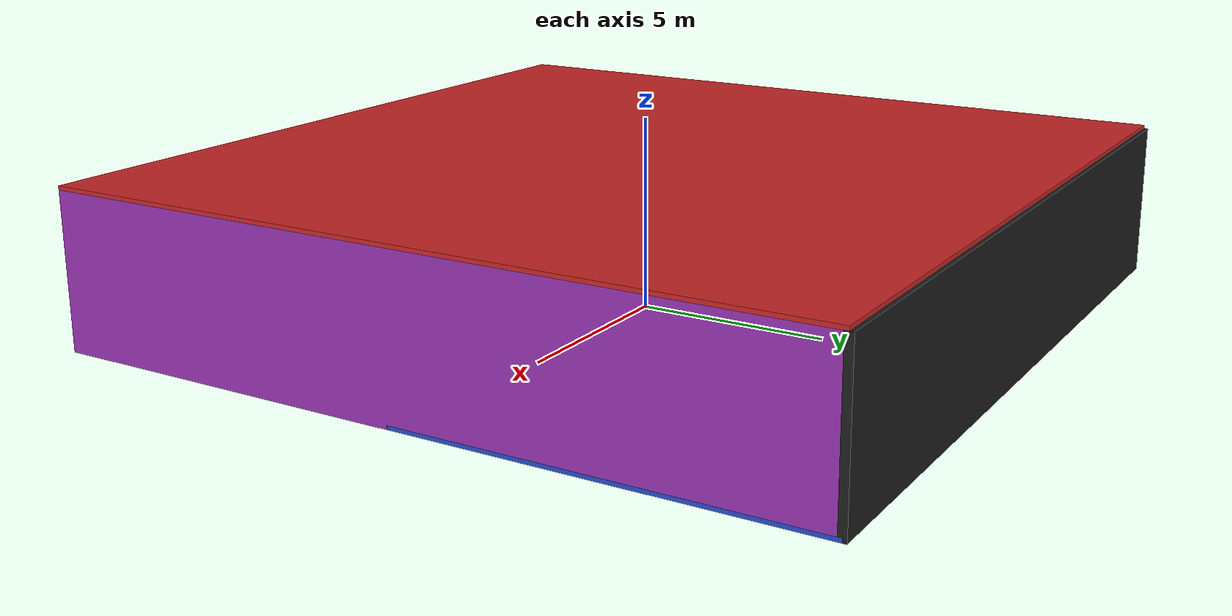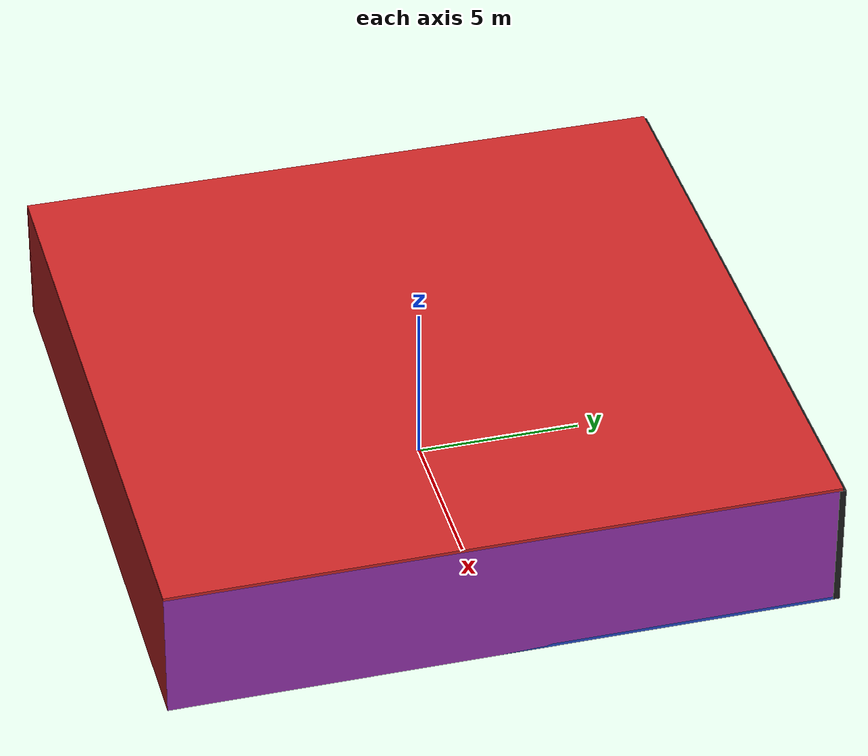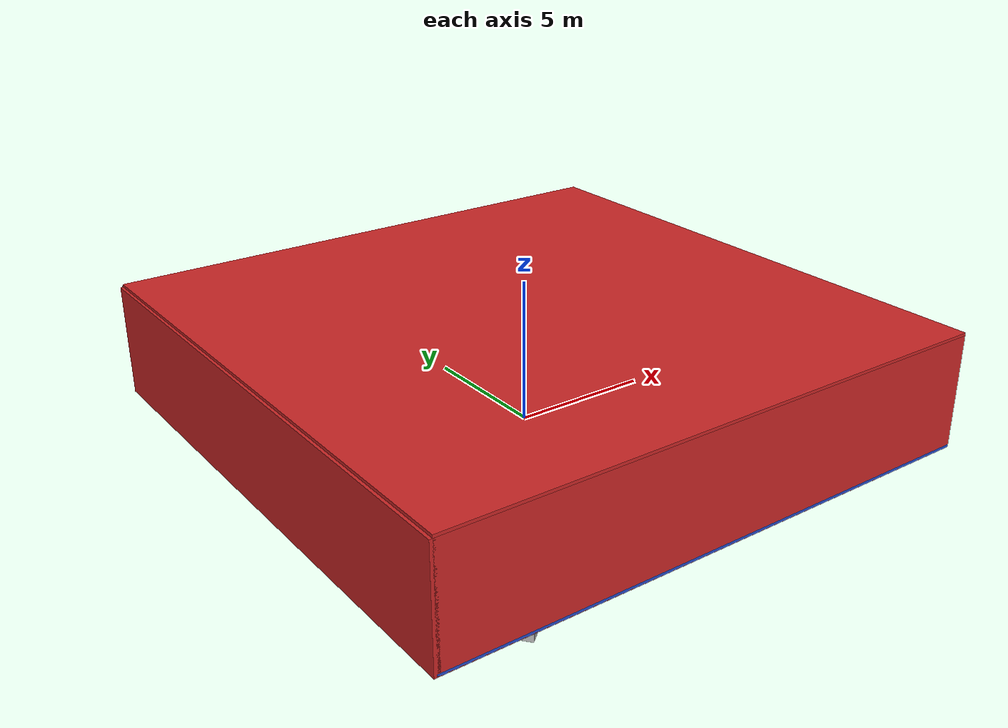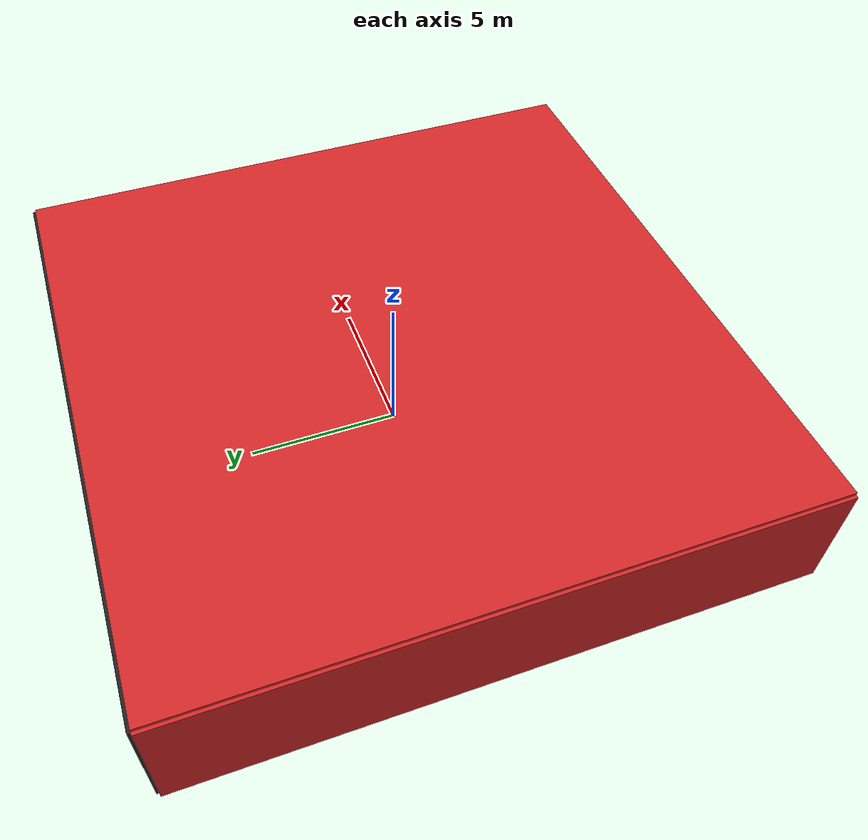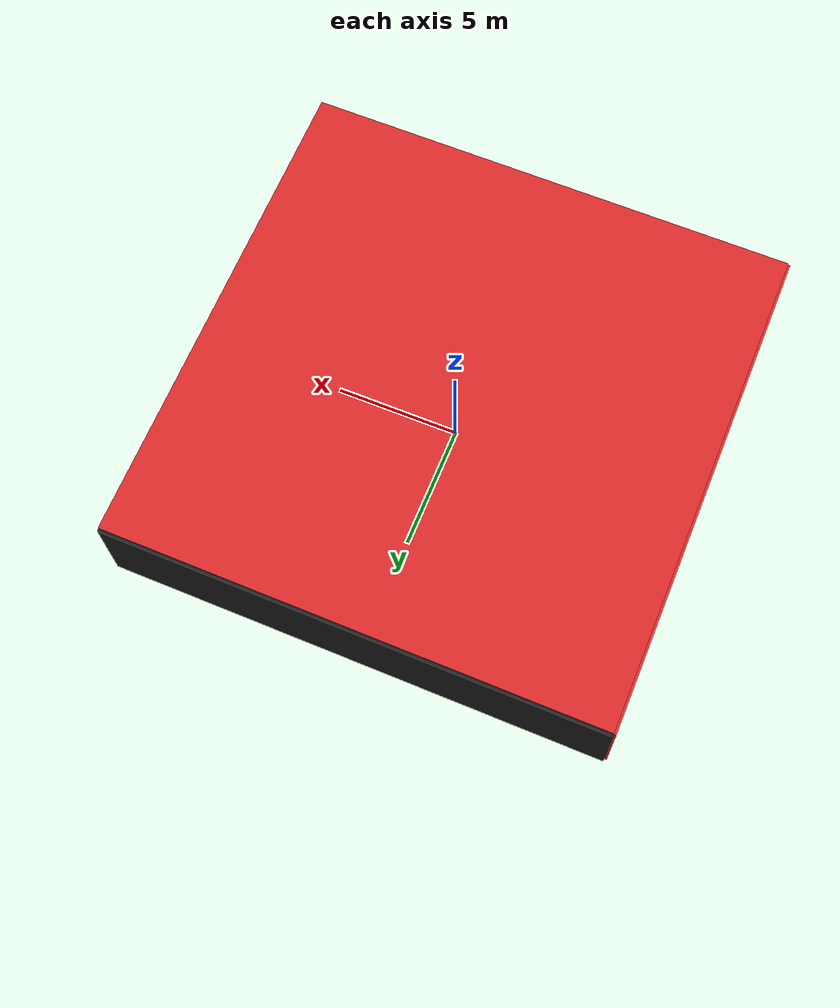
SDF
<sdf version="1.4">
 <world name="default">
  <physics type="ode">
   <max_step_size>0.001</max_step_size>
   <real_time_factor>1</real_time_factor>
   <real_time_update_rate>1000</real_time_update_rate>
   <gravity>0 0 -9.8</gravity>
  </physics>
  <scene><ambient>0.4 0.4 0.4 1</ambient><background>0.7 0.7 0.7 1</background><shadows>1</shadows></scene>
  <model name="Surrounding">
   <static>1</static>
   <link name="Ceiling">
    <collision name="Ceiling_Collision"><geometry><box><size>20 20 0.1</size></box></geometry></collision>
    <visual name="Ceiling_Visual">
     <geometry><box><size>20 20 0.1</size></box></geometry>
     <material>
      <script><uri>file://media/materials/scripts/gazebo.material</uri><name>Gazebo/RedBright</name></script>
     </material>
    </visual>
    <pose>0 0 4.05 0 0 0</pose>
   </link>
   <link name="Wall_South">
    <collision name="Wall_South_Collision">
     <geometry><box><size>20 0 4</size></box></geometry>
     <pose>0 0 2 0 -0 0</pose>
    </collision>
    <visual name="Wall_South_Visual">
     <pose>0 0 2 0 -0 0</pose>
     <geometry><box><size>20 0 4</size></box></geometry>
     <material>
      <script><uri>file://media/materials/scripts/gazebo.material</uri><name>Gazebo/RedBright</name></script>
     </material>
    </visual>
    <velocity_decay><linear>0</linear><angular>0</angular></velocity_decay>
    <pose>0 -10 0 0 -0 0</pose>
   </link>
   <link name="Wall_East">
    <collision name="Wall_21_Collision">
     <geometry><box><size>20 0 4</size></box></geometry>
     <pose>0 0 2 0 -0 0</pose>
    </collision>
    <visual name="Wall_21_Visual">
     <pose>0 0 2 0 -0 0</pose>
     <geometry><box><size>20 0 4</size></box></geometry>
     <material>
      <script><uri>file://media/materials/scripts/gazebo.material</uri><name>Gazebo/Purple</name></script>
     </material>
    </visual>
    <velocity_decay><linear>0</linear><angular>0</angular></velocity_decay>
    <pose>10 0 0 0 -0 1.5708</pose>
   </link>
   <link name="Wall_North">
    <collision name="Wall_22_Collision">
     <geometry><box><size>20 0.2 4</size></box></geometry>
     <pose>0 0 2 0 -0 0</pose>
    </collision>
    <visual name="Wall_22_Visual">
     <pose>0 0 2 0 -0 0</pose>
     <geometry><box><size>20 0.2 4</size></box></geometry>
     <material>
      <script><uri>file://media/materials/scripts/gazebo.material</uri><name>Gazebo/Black</name></script>
     </material>
    </visual>
    <velocity_decay><linear>0</linear><angular>0</angular></velocity_decay>
    <pose>0 10 0 0 -0 0</pose>
   </link>
   <link name="Wall_West">
    <collision name="Wall_23_Collision">
     <geometry><box><size>20 0.2 4</size></box></geometry>
     <pose>0 0 2 0 -0 0</pose>
    </collision>
    <visual name="Wall_23_Visual">
     <pose>0 0 2 0 -0 0</pose>
     <geometry><box><size>20 0.2 4</size></box></geometry>
     <material>
      <script><uri>file://media/materials/scripts/gazebo.material</uri><name>Gazebo/RedGlow</name></script>
     </material>
    </visual>
    <velocity_decay><linear>0</linear><angular>0</angular></velocity_decay>
    <pose>-10 0 0 0 0 -1.5708</pose>
   </link>
   <link name="Ground_link">
    <collision name="collision">
     <pose>0 0 .05 0 -0 0</pose>
     <geometry><box><size>20 20 0.1</size></box></geometry>
    </collision>
    <visual name="visual">
     <pose>0 0 .05 0 -0 0</pose>
     <geometry><box><size>20 20 0.1</size></box></geometry>
     <material>
      <script><uri>file://media/materials/scripts/gazebo.material</uri><name>Gazebo/Blue</name></script>
     </material>
    </visual>
   </link>
   <static>1</static>
  </model>
  <spherical_coordinates>
   <surface_model>EARTH_WGS84</surface_model>
   <latitude_deg>0</latitude_deg>
   <longitude_deg>0</longitude_deg>
   <elevation>0</elevation>
   <heading_deg>0</heading_deg>
  </spherical_coordinates>
  <light name="lightball_0" type="diffuse">
   <diffuse>0.8 0.8 0.8 1</diffuse>
   <specular>0.2 0.2 0.2 1</specular>
   <attenuation>
    <range>100</range>
    <constant>0.7</constant>
    <linear>0.01</linear>
    <quadratic>0.001</quadratic>
   </attenuation>
   <direction>-0.5 0.1 -0.9</direction>
   <pose>3.77893621044 2.39277135064 3.65028481953 0 0 0</pose>
  </light>
  <light name="lightball_1" type="diffuse">
   <diffuse>0.8 0.8 0.8 1</diffuse>
   <specular>0.2 0.2 0.2 1</specular>
   <attenuation>
    <range>100</range>
    <constant>0.7</constant>
    <linear>0.01</linear>
    <quadratic>0.001</quadratic>
   </attenuation>
   <direction>-0.5 0.1 -0.9</direction>
   <pose>1.09310621116 2.08283167802 1.0699307915 0 0 0</pose>
  </light>
  <light name="lightball_2" type="diffuse">
   <diffuse>0.8 0.8 0.8 1</diffuse>
   <specular>0.2 0.2 0.2 1</specular>
   <attenuation>
    <range>100</range>
    <constant>0.7</constant>
    <linear>0.01</linear>
    <quadratic>0.001</quadratic>
   </attenuation>
   <direction>-0.5 0.1 -0.9</direction>
   <pose>-0.709064613458 5.11387856067 3.72569350724 0 0 0</pose>
  </light>
  <light name="lightball_3" type="diffuse">
   <diffuse>0.8 0.8 0.8 1</diffuse>
   <specular>0.2 0.2 0.2 1</specular>
   <attenuation>
    <range>100</range>
    <constant>0.7</constant>
    <linear>0.01</linear>
    <quadratic>0.001</quadratic>
   </attenuation>
   <direction>-0.5 0.1 -0.9</direction>
   <pose>9.60268626214 -2.37074464003 3.31379985277 0 0 0</pose>
  </light>
  <light name="lightball_4" type="diffuse">
   <diffuse>0.8 0.8 0.8 1</diffuse>
   <specular>0.2 0.2 0.2 1</specular>
   <attenuation>
    <range>100</range>
    <constant>0.7</constant>
    <linear>0.01</linear>
    <quadratic>0.001</quadratic>
   </attenuation>
   <direction>-0.5 0.1 -0.9</direction>
   <pose>2.27401127882 -6.33417577347 3.84082578664 0 0 0</pose>
  </light>
  <light name="lightball_5" type="diffuse">
   <diffuse>0.8 0.8 0.8 1</diffuse>
   <specular>0.2 0.2 0.2 1</specular>
   <attenuation>
    <range>100</range>
    <constant>0.7</constant>
    <linear>0.01</linear>
    <quadratic>0.001</quadratic>
   </attenuation>
   <direction>-0.5 0.1 -0.9</direction>
   <pose>-9.80392641392 5.67901421543 2.56050673954 0 0 0</pose>
  </light>
  <light name="lightball_6" type="diffuse">
   <diffuse>0.8 0.8 0.8 1</diffuse>
   <specular>0.2 0.2 0.2 1</specular>
   <attenuation>
    <range>100</range>
    <constant>0.7</constant>
    <linear>0.01</linear>
    <quadratic>0.001</quadratic>
   </attenuation>
   <direction>-0.5 0.1 -0.9</direction>
   <pose>9.0312639995 -5.15780962739 1.75727562207 0 0 0</pose>
  </light>
  <light name="lightball_7" type="diffuse">
   <diffuse>0.8 0.8 0.8 1</diffuse>
   <specular>0.2 0.2 0.2 1</specular>
   <attenuation>
    <range>100</range>
    <constant>0.7</constant>
    <linear>0.01</linear>
    <quadratic>0.001</quadratic>
   </attenuation>
   <direction>-0.5 0.1 -0.9</direction>
   <pose>-5.92323592553 -4.72593019738 1.67262962892 0 0 0</pose>
  </light>
  <include>
   <uri>model://textured_shapes</uri>
   <pose>-7.73126424388 -7.87478214197 0 0 0 0.674568101857</pose>
  </include>
  <include>
   <uri>model://construction_cone</uri>
   <pose>7.94851755738 -6.88413553697 0 0 0 1.35659557423</pose>
  </include>
  <include>
   <uri>model://textured_shapes</uri>
   <pose>7.4549854434 1.04463306863 0 0 0 2.48613547524</pose>
  </include>
 </world>
</sdf>

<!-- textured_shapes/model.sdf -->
<sdf version="1.6">
  <model name="textured_shapes">
    <pose>0 0 0.5 0 0 0</pose>
    <link name="box">
      <pose>0 -1.5 0 0 0 0</pose>
      <collision name="collision">
        <geometry>
          <box>
            <size>1 1 1</size>
          </box>
        </geometry>
      </collision>
      <visual name="visual">
        <geometry>
          <box>
            <size>1 1 1</size>
          </box>
        </geometry>
        <material>
          <script>
            <uri>model://../model_source/models/textured_shapes/materials/scripts</uri>
            <uri>model://../model_source/models/textured_shapes/materials/textures</uri>
            <name>TexturedShape/Squares</name>
          </script>
        </material>
      </visual>
    </link>
    <link name="sphere">
      <collision name="collision">
        <geometry>
          <sphere>
            <radius>0.5</radius>
          </sphere>
        </geometry>
      </collision>
      <visual name="visual">
        <geometry>
          <sphere>
            <radius>0.5</radius>
          </sphere>
        </geometry>
        <material>
          <script>
            <uri>model://../model_source/models/textured_shapes/materials/scripts</uri>
            <uri>model://../model_source/models/textured_shapes/materials/textures</uri>
            <name>TexturedShape/Squares</name>
          </script>
        </material>
      </visual>
    </link>
    <link name="cylinder">
      <pose>0 1.5 0 0 0 0</pose>
      <collision name="collision">
        <geometry>
          <cylinder>
            <radius>0.5</radius>
            <length>1</length>
          </cylinder>
        </geometry>
      </collision>
      <visual name="visual">
        <geometry>
          <cylinder>
            <radius>0.5</radius>
            <length>1</length>
          </cylinder>
        </geometry>
        <material>
          <script>
            <uri>model://../model_source/models/textured_shapes/materials/scripts</uri>
            <uri>model://../model_source/models/textured_shapes/materials/textures</uri>
            <name>TexturedShape/Squares</name>
          </script>
        </material>
      </visual>
    </link>
  </model>
</sdf>

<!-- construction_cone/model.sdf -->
<sdf version="1.5">
  <model name="Construction Cone">
    <link name="link">
      <collision name="collision">
        <geometry>
          <mesh>
            <scale>10 10 10</scale>
            <uri>file://isr-testbed/construction_cone/meshes/construction_cone.dae</uri>
          </mesh>
        </geometry>
      </collision>
      <visual name="visual">
        <geometry>
          <mesh>
            <scale>10 10 10</scale>
            <uri>file://isr-testbed/construction_cone/meshes/construction_cone.dae</uri>
          </mesh>
        </geometry>
      </visual>
    </link>
  </model>
</sdf>
